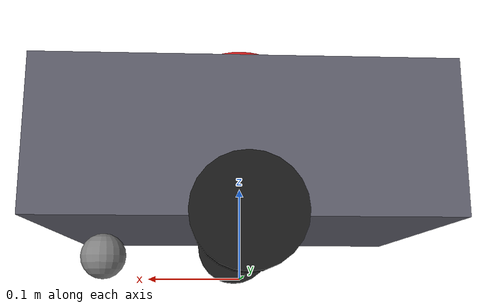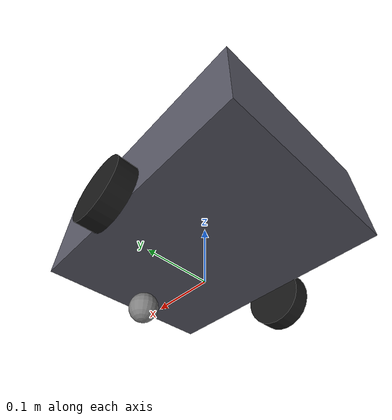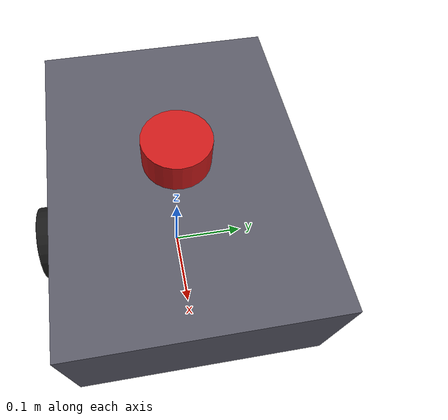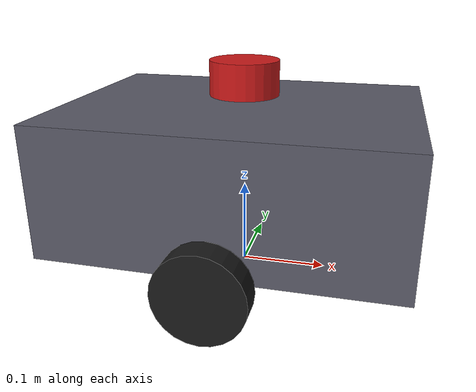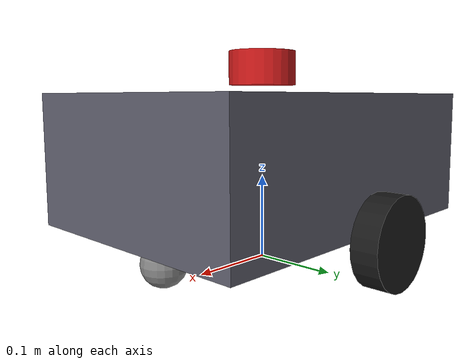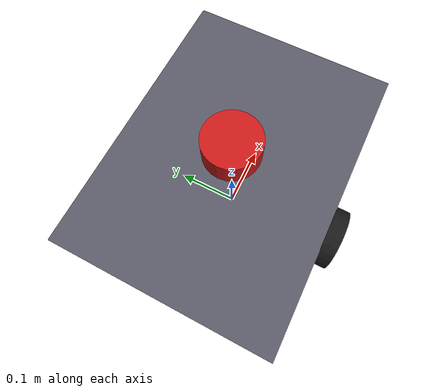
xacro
<?xml version="1.0"?>
<robot name="agv" xmlns:xacro="http://www.ros.org/wiki/xacro">

  <!-- ============ PARAMETERS ============ -->
  <xacro:property name="chassis_x" value="0.40"/>
  <xacro:property name="chassis_y" value="0.30"/>
  <xacro:property name="chassis_z" value="0.15"/>
  <xacro:property name="chassis_mass" value="8.0"/>

  <xacro:property name="wheel_radius" value="0.05"/>
  <xacro:property name="wheel_width" value="0.03"/>
  <xacro:property name="wheel_mass" value="0.5"/>
  <xacro:property name="wheel_separation" value="0.35"/>
  <xacro:property name="wheel_x_offset" value="0.0"/>

  <xacro:property name="caster_radius" value="0.025"/>
  <xacro:property name="caster_mass" value="0.2"/>
  <xacro:property name="caster_x_offset" value="0.15"/>

  <xacro:property name="laser_radius" value="0.04"/>
  <xacro:property name="laser_height" value="0.04"/>
  <xacro:property name="laser_mass" value="0.15"/>

  <xacro:property name="ground_clearance" value="0.02"/>
  <!-- chassis sits so its bottom is ground_clearance above ground, wheel radius must match -->

  <!-- ============ MATERIALS ============ -->
  <material name="chassis_grey"><color rgba="0.35 0.35 0.4 1.0"/></material>
  <material name="wheel_black"><color rgba="0.1 0.1 0.1 1.0"/></material>
  <material name="caster_grey"><color rgba="0.5 0.5 0.5 1.0"/></material>
  <material name="laser_red"><color rgba="0.8 0.1 0.1 1.0"/></material>

  <!-- ============ BASE_FOOTPRINT (ground projection, standard for nav2) ============ -->
  <link name="base_footprint"/>

  <joint name="base_footprint_joint" type="fixed">
    <parent link="base_footprint"/>
    <child link="base_link"/>
    <origin xyz="0 0 ${wheel_radius}" rpy="0 0 0"/>
  </joint>

  <!-- ============ CHASSIS ============ -->
  <link name="base_link">
    <visual>
      <origin xyz="0 0 ${chassis_z/2}" rpy="0 0 0"/>
      <geometry><box size="${chassis_x} ${chassis_y} ${chassis_z}"/></geometry>
      <material name="chassis_grey"/>
    </visual>
    <collision>
      <origin xyz="0 0 ${chassis_z/2}" rpy="0 0 0"/>
      <geometry><box size="${chassis_x} ${chassis_y} ${chassis_z}"/></geometry>
    </collision>
    <inertial>
      <origin xyz="0 0 ${chassis_z/2}" rpy="0 0 0"/>
      <mass value="${chassis_mass}"/>
      <inertia ixx="0.075" ixy="0.0" ixz="0.0" iyy="0.1217" iyz="0.0" izz="0.1667"/>
    </inertial>
  </link>

  <gazebo reference="base_link">
    <material>Gazebo/Grey</material>
  </gazebo>

  <!-- ============ WHEEL MACRO ============ -->
  <xacro:macro name="wheel" params="prefix reflect">
    <link name="${prefix}_wheel_link">
      <visual>
        <origin xyz="0 0 0" rpy="${pi/2} 0 0"/>
        <geometry><cylinder radius="${wheel_radius}" length="${wheel_width}"/></geometry>
        <material name="wheel_black"/>
      </visual>
      <collision>
        <origin xyz="0 0 0" rpy="${pi/2} 0 0"/>
        <geometry><cylinder radius="${wheel_radius}" length="${wheel_width}"/></geometry>
      </collision>
      <inertial>
        <mass value="${wheel_mass}"/>
        <inertia ixx="0.00035" ixy="0.0" ixz="0.0" iyy="0.000625" iyz="0.0" izz="0.00035"/>
      </inertial>
    </link>

    <joint name="${prefix}_wheel_joint" type="continuous">
      <parent link="base_link"/>
      <child link="${prefix}_wheel_link"/>
      <origin xyz="${wheel_x_offset} ${reflect * wheel_separation/2} 0" rpy="0 0 0"/>
      <axis xyz="0 1 0"/>
      <dynamics damping="0.1" friction="0.01"/>
    </joint>

    <gazebo reference="${prefix}_wheel_link">
      <material>Gazebo/Black</material>
      <mu1>1.0</mu1>
      <mu2>1.0</mu2>
    </gazebo>
  </xacro:macro>

  <xacro:wheel prefix="left"  reflect="1"/>
  <xacro:wheel prefix="right" reflect="-1"/>

  <!-- ============ CASTER (passive support wheel, front) ============ -->
  <link name="caster_link">
    <visual>
      <geometry><sphere radius="${caster_radius}"/></geometry>
      <material name="caster_grey"/>
    </visual>
    <collision>
      <geometry><sphere radius="${caster_radius}"/></geometry>
    </collision>
    <inertial>
      <mass value="${caster_mass}"/>
      <inertia ixx="0.00005" ixy="0.0" ixz="0.0" iyy="0.00005" iyz="0.0" izz="0.00005"/>
    </inertial>
  </link>

  <joint name="caster_joint" type="fixed">
    <parent link="base_link"/>
    <child link="caster_link"/>
    <origin xyz="${caster_x_offset} 0 ${caster_radius - wheel_radius}" rpy="0 0 0"/>
  </joint>

  <gazebo reference="caster_link">
    <material>Gazebo/Grey</material>
    <mu1>0.01</mu1>
    <mu2>0.01</mu2>
  </gazebo>

  <!-- ============ LIDAR MOUNT + LINK ============ -->
  <link name="laser_link">
    <visual>
      <geometry><cylinder radius="${laser_radius}" length="${laser_height}"/></geometry>
      <material name="laser_red"/>
    </visual>
    <collision>
      <geometry><cylinder radius="${laser_radius}" length="${laser_height}"/></geometry>
    </collision>
    <inertial>
      <mass value="${laser_mass}"/>
      <inertia ixx="0.00008" ixy="0.0" ixz="0.0" iyy="0.00008" iyz="0.0" izz="0.00012"/>
    </inertial>
  </link>

  <joint name="laser_joint" type="fixed">
    <parent link="base_link"/>
    <child link="laser_link"/>
    <origin xyz="0 0 ${chassis_z + laser_height/2 + 0.01}" rpy="0 0 0"/>
  </joint>

  <gazebo reference="laser_link">
    <material>Gazebo/Red</material>
  </gazebo>

  <!-- ============ GAZEBO (Harmonic / gz-sim) PLUGINS ============ -->

  <!-- Differential drive system: consumes /cmd_vel, produces wheel motion,
       publishes odometry + odom->base_footprint TF on gz transport topics -->
  <gazebo>
    <plugin filename="gz-sim-diff-drive-system" name="gz::sim::systems::DiffDrive">
      <left_joint>left_wheel_joint</left_joint>
      <right_joint>right_wheel_joint</right_joint>
      <wheel_separation>${wheel_separation}</wheel_separation>
      <wheel_radius>${wheel_radius}</wheel_radius>
      <odom_publish_frequency>30</odom_publish_frequency>
      <topic>cmd_vel</topic>
      <odom_topic>odom</odom_topic>
      <tf_topic>tf</tf_topic>
      <frame_id>odom</frame_id>
      <child_frame_id>base_footprint</child_frame_id>
      <publish_odom>true</publish_odom>
      <publish_odom_tf>true</publish_odom_tf>
      <publish_wheel_tf>false</publish_wheel_tf>
      <max_linear_acceleration>2.0</max_linear_acceleration>
      <min_linear_acceleration>-2.0</min_linear_acceleration>
      <max_angular_acceleration>3.0</max_angular_acceleration>
      <min_angular_acceleration>-3.0</min_angular_acceleration>
    </plugin>
  </gazebo>

  <!-- Joint state publisher system: needed for wheel joints to animate + for
       robot_state_publisher to build correct wheel TFs -->
  <gazebo>
    <plugin filename="gz-sim-joint-state-publisher-system" name="gz::sim::systems::JointStatePublisher">
      <joint_name>left_wheel_joint</joint_name>
      <joint_name>right_wheel_joint</joint_name>
      <topic>joint_states</topic>
    </plugin>
  </gazebo>

  <!-- 2D LiDAR sensor (gpu_lidar) -->
  <gazebo reference="laser_link">
    <sensor name="lidar_sensor" type="gpu_lidar">
      <pose>0 0 0 0 0 0</pose>
      <topic>scan</topic>
      <gz_frame_id>laser_link</gz_frame_id>
      <update_rate>10</update_rate>
      <always_on>true</always_on>
      <visualize>true</visualize>
      <lidar>
        <scan>
          <horizontal>
            <samples>360</samples>
            <resolution>1</resolution>
            <min_angle>-3.14159</min_angle>
            <max_angle>3.14159</max_angle>
          </horizontal>
        </scan>
        <range>
          <min>0.12</min>
          <max>12.0</max>
          <resolution>0.01</resolution>
        </range>
        <noise>
          <type>gaussian</type>
          <mean>0.0</mean>
          <stddev>0.01</stddev>
        </noise>
      </lidar>
    </sensor>
  </gazebo>

</robot>
